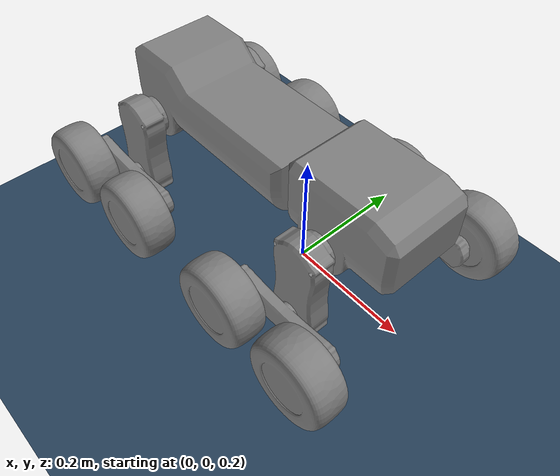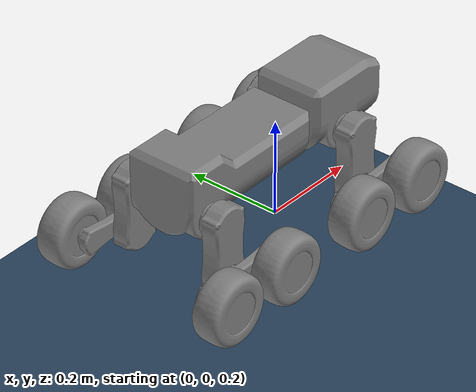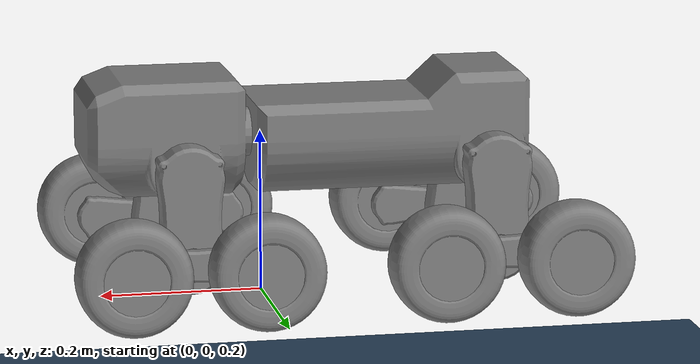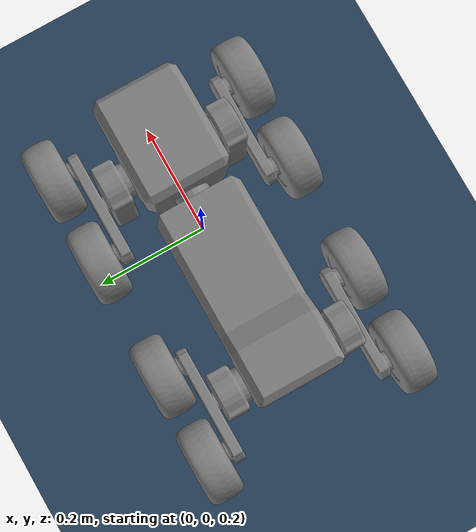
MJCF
<mujoco model="walter_scene">

  <include file="walter_mjx.xml"/>

  <statistic center="0 0 0.1" extent="0.8"/>

  <visual>
    <headlight diffuse="0.6 0.6 0.6" ambient="0.3 0.3 0.3" specular="0 0 0"/>
    <rgba haze="0.15 0.25 0.35 1"/>
    <global azimuth="120" elevation="-20"/>
  </visual>

  <asset>
    <texture type="skybox" builtin="gradient" rgb1="0.3 0.5 0.7" rgb2="0 0 0" width="512" height="3072"/>
    <texture type="2d" name="groundplane" builtin="checker" mark="edge" rgb1="0.2 0.3 0.4" rgb2="0.1 0.2 0.3"
      markrgb="0.8 0.8 0.8" width="300" height="300"/>
    <material name="groundplane" texture="groundplane" texuniform="true" texrepeat="5 5" reflectance="0.2"/>
  </asset>

  <worldbody>
    <light pos="0 0 5" dir="0 0 -1" directional="true"/>
    <geom name="floor" size="0 0 0.05" type="plane" material="groundplane" friction="1 0.005 0.0001"/>
  </worldbody>

</mujoco>

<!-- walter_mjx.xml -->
<mujoco model="walter_mjx">
    <compiler angle="radian"/>

    <option iterations="1" ls_iterations="5">
        <flag eulerdamp="disable"/>
    </option>

    <asset>
        <texture type="skybox" builtin="gradient" rgb1="1 1 1" rgb2=".63 .8 1" width="256" height="256"/>
        <mesh name="thigh_mesh" file="assets/Thigh.stl"/>
        <mesh name="shin_mesh" file="assets/Shin.stl"/>
        <mesh name="wheel_mesh" file="assets/Wheel.stl"/>
        <mesh name="body_mesh" file="assets/Body.stl"/>
        <mesh name="head_mesh" file="assets/Head.stl"/>
    </asset>

    <default>
        <default class="walter">
            <geom contype="0" conaffinity="0" type="mesh"/>
            <default class="walter/collision">
                <geom group="3" contype="0" conaffinity="1"/>
                <default class="walter/collision/wheel">
                    <geom type="capsule" size="0.0565 0.001" solimp="0.015 1 0.031" friction="0.8 0.02 0.01"/>
                    <joint type="hinge" axis="0 0 1" damping="0.1"/>
                </default>
            </default>
            <default class="walter/body">
                <geom mesh="body_mesh"/>
            </default>
            <default class="walter/thigh">
                <geom mesh="thigh_mesh"/>
            </default>
            <default class="walter/hip_joint">
                <joint type="hinge" axis="0 0 1" armature="0.02" damping="2"/>
            </default>
            <default class="walter/shin">
                <geom mesh="shin_mesh"/>
            </default>
            <default class="walter/knee_joint">
                <joint type="hinge" axis="0 0 1" armature="0.02" damping="2"/>
            </default>
            <default class="walter/wheel">
                <geom mesh="wheel_mesh"/>
            </default>
        </default>

        <default class="knee_actuator">
            <position kp="100" kv="10" forcerange="-16 16"/>
        </default>
        <default class="hip_actuator">
            <position kp="300" kv="1" forcerange="-15 15"/>
        </default>
        <default class="wheel_actuator">
            <general gear="2" forcerange="-2.8 2.8"/>
        </default>
    </default>

    <!-- WALTER MODEL -->
    <worldbody>
        <light diffuse=".5 .5 .5" pos="0 0 3" dir="0 0 -1"/>
        <!-- Rear Body Section -->
        <body name="body" pos="0 0 0.4">
            <freejoint name="body_joint"/>
            <!-- TODO: Add correct inertia -->
            <inertial pos="0 -0.05 0.03" mass="0.20157" diaginertia="0.0005212 0.000114 0.0005585"/>
            <geom class="walter/body"/>

            <!-- Back left thigh -->
            <body name="bl_thigh" pos="-0.274 0.075 -0.0325" quat="0 0 1 1">
                <inertial pos="0 -0.05 0.03" mass="0.20157" diaginertia="0.0005212 0.000114 0.0005585"/>
                <joint name="bl_hip" class="walter/hip_joint"/>
                <geom class="walter/thigh"/>
                <!-- Back left shin -->
                <body name="bl_shin" pos="0 -0.1 0.043" >
                    <joint name="bl_knee" class="walter/knee_joint"/>
                    <geom class="walter/shin"/>
                    <!-- Back left wheels -->
                    <body name="bl_wheel_1" pos="0.08 0 0.088">
                        <geom class="walter/wheel"/>
                        <geom class="walter/collision/wheel"/>
                        <joint name="bl_wheel_1_joint" class="walter/collision/wheel"/>
                        <site name="bl_wheel_1" type="sphere" size="0.0565" group="5"/>
                    </body>
                    <body name="bl_wheel_2" pos="-0.08 0 0.088">
                        <geom class="walter/wheel"/>
                        <geom class="walter/collision/wheel"/>
                        <joint name="bl_wheel_2_joint" class="walter/collision/wheel"/>
                        <site name="bl_wheel_2" type="sphere" size="0.0565" group="5"/>
                    </body>
                </body>
            </body>

            <!-- Back right thigh -->
            <body name="br_thigh" pos="-0.274 -0.075 -0.0325" quat="1 1 0 0">
                <inertial pos="0 -0.05 0.03" mass="0.20157" diaginertia="0.0005212 0.000114 0.0005585"/>
                <joint name="br_hip" class="walter/hip_joint"/>
                <geom class="walter/thigh"/>
                <!-- Back right shin -->
                <body name="br_shin" pos="0 -0.1 0.043" >
                    <joint name="br_knee" class="walter/knee_joint"/>
                    <geom class="walter/shin"/>
                    <!-- Back right wheels -->
                    <body name="br_wheel_1" pos="0.08 0 0.088">
                        <geom class="walter/wheel"/>
                        <geom class="walter/collision/wheel"/>
                        <joint name="br_wheel_1_joint" class="walter/collision/wheel"/>
                        <site name="br_wheel_1" type="sphere" size="0.0565" group="5"/>
                    </body>
                    <body name="br_wheel_2" pos="-0.08 0 0.088">
                        <geom class="walter/wheel"/>
                        <geom class="walter/collision/wheel"/>
                        <joint name="br_wheel_2_joint" class="walter/collision/wheel"/>
                        <site name="br_wheel_2" type="sphere" size="0.0565" group="5"/>
                    </body>
                </body>
            </body>

            <!-- Front Body Section -->
            <body name="head" pos="0.01 0 0">
                <!-- TODO: Add correct inertia -->
                <inertial pos="0 -0.05 0.03" mass="0.20157" diaginertia="0.0005212 0.000114 0.0005585"/>
                <joint name="head_joint" type="hinge" axis="1 0 0" stiffness="0.05" range="-0.5 0.5"/>
                <geom type="mesh" mesh="head_mesh"/>

                <!-- Front left thigh -->
                <body name="fl_thigh" pos="0.094 0.075 -0.0325" quat="0 0 1 1">
                    <inertial pos="0 -0.05 0.03" mass="0.20157" diaginertia="0.0005212 0.000114 0.0005585"/>
                    <joint name="fl_hip" class="walter/hip_joint"/>
                    <geom class="walter/thigh"/>
                    <!-- Back left shin -->
                    <body name="fl_shin" pos="0 -0.1 0.043" >
                        <joint name="fl_knee" class="walter/knee_joint"/>
                        <geom class="walter/shin"/>
                        <!-- Back left wheels -->
                        <body name="fl_wheel_1" pos="0.08 0 0.088">
                            <geom class="walter/wheel"/>
                            <geom class="walter/collision/wheel"/>
                            <joint name="fl_wheel_1_joint" class="walter/collision/wheel"/>
                            <site name="fl_wheel_1" type="sphere" size="0.0565" group="5"/>
                        </body>
                        <body name="fl_wheel_2" pos="-0.08 0 0.088">
                            <geom class="walter/wheel"/>
                            <geom class="walter/collision/wheel"/>
                            <joint name="fl_wheel_2_joint" class="walter/collision/wheel"/>
                            <site name="fl_wheel_2" type="sphere" size="0.0565" group="5"/>
                        </body>
                    </body>
                </body>

                <!-- Front right thigh -->
                <body name="fr_thigh" pos="0.094 -0.075 -0.0325" quat="1 1 0 0">
                    <inertial pos="0 -0.05 0.03" mass="0.20157" diaginertia="0.0005212 0.000114 0.0005585"/>
                    <joint name="fr_hip" class="walter/hip_joint"/>
                    <geom class="walter/thigh"/>
                    <!-- Back left shin -->
                    <body name="fr_shin" pos="0 -0.1 0.043" >
                        <joint name="fr_knee" class="walter/knee_joint"/>
                        <geom class="walter/shin"/>
                        <!-- Back left wheels -->
                        <body name="fr_wheel_1" pos="0.08 0 0.088">
                            <geom class="walter/wheel"/>
                            <geom class="walter/collision/wheel"/>
                            <joint name="fr_wheel_1_joint" class="walter/collision/wheel"/>
                            <site name="fr_wheel_1" type="sphere" size="0.0565" group="5"/>
                        </body>
                        <body name="fr_wheel_2" pos="-0.08 0 0.088">
                            <geom class="walter/wheel"/>
                            <geom class="walter/collision/wheel"/>
                            <joint name="fr_wheel_2_joint" class="walter/collision/wheel"/>
                            <site name="fr_wheel_2" type="sphere" size="0.0565" group="5"/>
                        </body>
                    </body>
                </body>
            </body>
        </body>
    </worldbody>

    <!-- Defining the actuators -->
    <actuator>
        <position joint="fr_hip" class="hip_actuator"/>
        <position joint="fr_knee" class="knee_actuator"/>
        <general joint="fr_wheel_1_joint" class="wheel_actuator"/>
        <general joint="fr_wheel_2_joint" class="wheel_actuator"/>
        <position joint="fl_hip" class="hip_actuator"/>
        <position joint="fl_knee" class="knee_actuator"/>
        <general joint="fl_wheel_1_joint" class="wheel_actuator"/>
        <general joint="fl_wheel_2_joint" class="wheel_actuator"/>
        <position joint="br_hip" class="hip_actuator"/>
        <position joint="br_knee" class="knee_actuator"/>
        <general joint="br_wheel_1_joint" class="wheel_actuator"/>
        <general joint="br_wheel_2_joint" class="wheel_actuator"/>
        <position joint="bl_hip" class="hip_actuator"/>
        <position joint="bl_knee" class="knee_actuator"/>
        <general joint="bl_wheel_1_joint" class="wheel_actuator"/>
        <general joint="bl_wheel_2_joint" class="wheel_actuator"/>
    </actuator>

    <keyframe>
    <key name="home"
        qpos="0 0 0.2
            1 0 0 0
            0.0 0.0 0.0
            0.0 0.0 0.0
            0.0 0.0 0.0
            0.0 0.0 0.0
            0.0 0.0 0.0
            0.0 0.0"
        ctrl="0 0 0 0
             0 0 0 0
             0 0 0 0
             0 0 0 0"/>
    </keyframe>

</mujoco>
